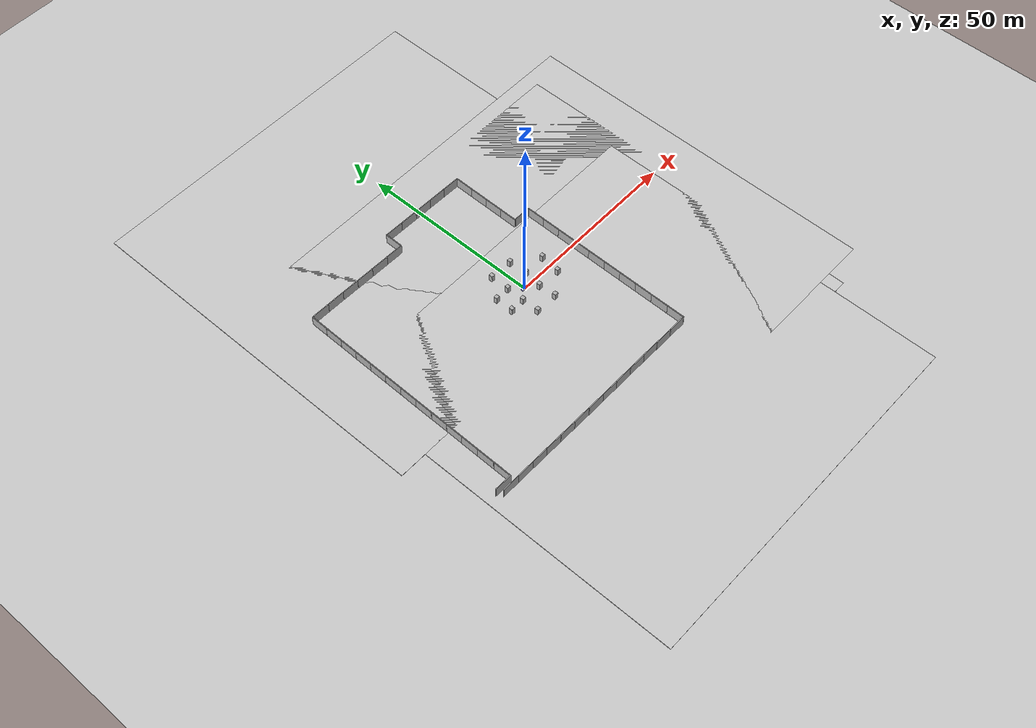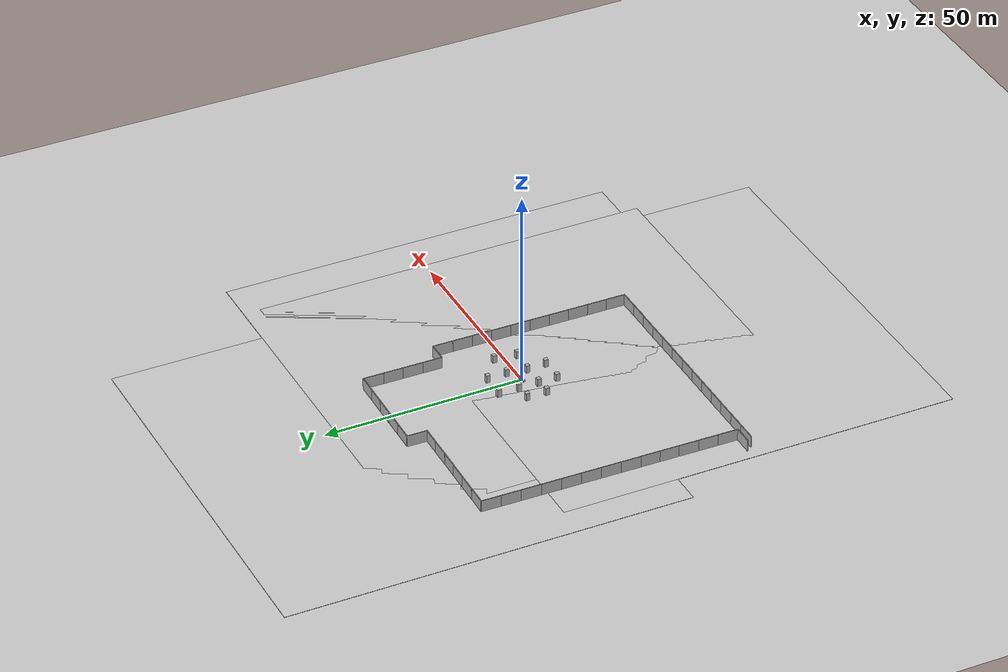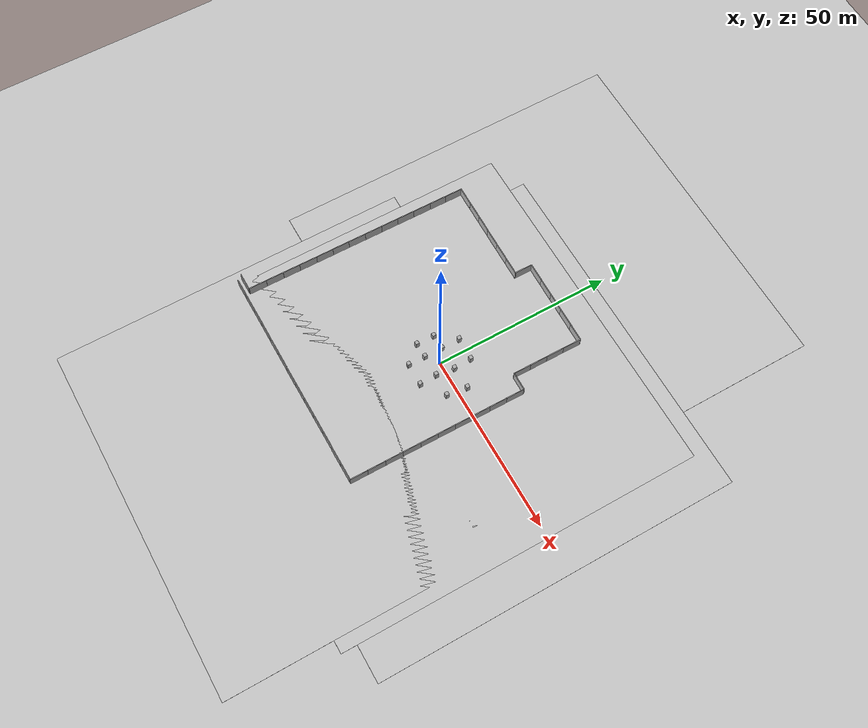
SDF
<sdf version="1.9">
 <world name="block_room">
  <model name="ground_plane">
   <static>true</static>
   <link name="link">
    <collision name="collision">
     <geometry><plane><normal>0 0 1</normal><size>100 100</size></plane></geometry>
     <surface>
      <friction>
       <ode><mu>50</mu></ode>
       <bullet><friction>1</friction><rolling_friction>0.10000000000000001</rolling_friction></bullet>
      </friction>
     </surface>
    </collision>
    <visual name="visual">
     <geometry><plane><normal>0 0 1</normal><size>100 100</size></plane></geometry>
     <material>
      <ambient>0.8 0.8 0.8 1</ambient>
      <diffuse>0.8 0.8 0.8 1</diffuse>
      <specular>0.8 0.8 0.8 1</specular>
     </material>
    </visual>
    <inertial>
     <mass>1</mass>
     <inertia><ixx>1</ixx><ixy>0</ixy><ixz>0</ixz><iyy>1</iyy><iyz>0</iyz><izz>1</izz></inertia>
    </inertial>
   </link>
  </model>
  <include>
   <uri>file:///home/dliujm/um_files/rob_498_av/Autovehicle25/audi_ws/install/robot_desc/share/robot_desc/models/lucy</uri>
   <name>lucy_robot</name>
  </include>
  <model name="ground_plane_1">
   <static>true</static>
   <link name="link">
    <collision name="collision">
     <geometry><plane><normal>0 0 1</normal><size>100 100</size></plane></geometry>
     <surface>
      <friction>
       <ode><mu>50</mu></ode>
       <bullet><friction>1</friction><rolling_friction>0.10000000000000001</rolling_friction></bullet>
      </friction>
     </surface>
    </collision>
    <visual name="visual">
     <geometry><plane><normal>0 0 1</normal><size>100 100</size></plane></geometry>
     <material>
      <ambient>0.8 0.8 0.8 1</ambient>
      <diffuse>0.8 0.8 0.8 1</diffuse>
      <specular>0.8 0.8 0.8 1</specular>
     </material>
    </visual>
    <inertial>
     <mass>1</mass>
     <inertia><ixx>1</ixx><ixy>0</ixy><ixz>0</ixz><iyy>1</iyy><iyz>0</iyz><izz>1</izz></inertia>
    </inertial>
   </link>
   <pose>3.37132 -6.94607 0 0 -0 0</pose>
  </model>
  <model name="ground_plane_1_1">
   <static>true</static>
   <link name="link">
    <collision name="collision">
     <geometry><plane><normal>0 0 1</normal><size>100 100</size></plane></geometry>
     <surface>
      <friction>
       <ode><mu>50</mu></ode>
       <bullet><friction>1</friction><rolling_friction>0.10000000000000001</rolling_friction></bullet>
      </friction>
     </surface>
    </collision>
    <visual name="visual">
     <geometry><plane><normal>0 0 1</normal><size>100 100</size></plane></geometry>
     <material>
      <ambient>0.8 0.8 0.8 1</ambient>
      <diffuse>0.8 0.8 0.8 1</diffuse>
      <specular>0.8 0.8 0.8 1</specular>
     </material>
    </visual>
    <inertial>
     <mass>1</mass>
     <inertia><ixx>1</ixx><ixy>0</ixy><ixz>0</ixz><iyy>1</iyy><iyz>0</iyz><izz>1</izz></inertia>
    </inertial>
   </link>
   <pose>13.6849 -2.64222 0 0 -0 0</pose>
  </model>
  <model name="wall">
   <static>true</static>
   <link name="link">
    <collision name="collision"><geometry><box><size>5 0.2 3</size></box></geometry></collision>
    <visual name="visual">
     <geometry><box><size>5 0.2 3</size></box></geometry>
     <material><ambient>0.7 0.7 0.7 1</ambient><diffuse>0.7 0.7 0.7 1</diffuse></material>
    </visual>
    <inertial>
     <mass>1</mass>
     <inertia><ixx>1</ixx><ixy>0</ixy><ixz>0</ixz><iyy>1</iyy><iyz>0</iyz><izz>1</izz></inertia>
    </inertial>
   </link>
   <pose>0 -35.2766 1.50449 0 -0 0</pose>
  </model>
  <model name="ground_plane_1_2">
   <static>true</static>
   <link name="link">
    <collision name="collision">
     <geometry><plane><normal>0 0 1</normal><size>100 100</size></plane></geometry>
     <surface>
      <friction>
       <ode><mu>50</mu></ode>
       <bullet><friction>1</friction><rolling_friction>0.10000000000000001</rolling_friction></bullet>
      </friction>
     </surface>
    </collision>
    <visual name="visual">
     <geometry><plane><normal>0 0 1</normal><size>100 100</size></plane></geometry>
     <material>
      <ambient>0.8 0.8 0.8 1</ambient>
      <diffuse>0.8 0.8 0.8 1</diffuse>
      <specular>0.8 0.8 0.8 1</specular>
     </material>
    </visual>
    <inertial>
     <mass>1</mass>
     <inertia><ixx>1</ixx><ixy>0</ixy><ixz>0</ixz><iyy>1</iyy><iyz>0</iyz><izz>1</izz></inertia>
    </inertial>
   </link>
   <pose>-0.202127 -35.9388 0 0 -0 0</pose>
  </model>
  <model name="wall_1">
   <static>true</static>
   <link name="link">
    <collision name="collision"><geometry><box><size>5 0.2 3</size></box></geometry></collision>
    <visual name="visual">
     <geometry><box><size>5 0.2 3</size></box></geometry>
     <material><ambient>0.7 0.7 0.7 1</ambient><diffuse>0.7 0.7 0.7 1</diffuse></material>
    </visual>
    <inertial>
     <mass>1</mass>
     <inertia><ixx>1</ixx><ixy>0</ixy><ixz>0</ixz><iyy>1</iyy><iyz>0</iyz><izz>1</izz></inertia>
    </inertial>
   </link>
   <pose>-5.01711 -35.2867 1.50449 0 -0 0</pose>
  </model>
  <model name="wall_2">
   <static>true</static>
   <link name="link">
    <collision name="collision"><geometry><box><size>5 0.2 3</size></box></geometry></collision>
    <visual name="visual">
     <geometry><box><size>5 0.2 3</size></box></geometry>
     <material><ambient>0.7 0.7 0.7 1</ambient><diffuse>0.7 0.7 0.7 1</diffuse></material>
    </visual>
    <inertial>
     <mass>1</mass>
     <inertia><ixx>1</ixx><ixy>0</ixy><ixz>0</ixz><iyy>1</iyy><iyz>0</iyz><izz>1</izz></inertia>
    </inertial>
   </link>
   <pose>-10.0087 -35.2904 1.50449 0 -0 0</pose>
  </model>
  <model name="wall_3">
   <static>true</static>
   <link name="link">
    <collision name="collision"><geometry><box><size>5 0.2 3</size></box></geometry></collision>
    <visual name="visual">
     <geometry><box><size>5 0.2 3</size></box></geometry>
     <material><ambient>0.7 0.7 0.7 1</ambient><diffuse>0.7 0.7 0.7 1</diffuse></material>
    </visual>
    <inertial>
     <mass>1</mass>
     <inertia><ixx>1</ixx><ixy>0</ixy><ixz>0</ixz><iyy>1</iyy><iyz>0</iyz><izz>1</izz></inertia>
    </inertial>
   </link>
   <pose>4.87545 -35.2716 1.50449 0 -0 0</pose>
  </model>
  <model name="wall_4">
   <static>true</static>
   <link name="link">
    <collision name="collision"><geometry><box><size>5 0.2 3</size></box></geometry></collision>
    <visual name="visual">
     <geometry><box><size>5 0.2 3</size></box></geometry>
     <material><ambient>0.7 0.7 0.7 1</ambient><diffuse>0.7 0.7 0.7 1</diffuse></material>
    </visual>
    <inertial>
     <mass>1</mass>
     <inertia><ixx>1</ixx><ixy>0</ixy><ixz>0</ixz><iyy>1</iyy><iyz>0</iyz><izz>1</izz></inertia>
    </inertial>
   </link>
   <pose>9.82758 -35.33 1.50449 0 -0 0</pose>
  </model>
  <model name="wall_5">
   <static>true</static>
   <link name="link">
    <collision name="collision"><geometry><box><size>5 0.2 3</size></box></geometry></collision>
    <visual name="visual">
     <geometry><box><size>5 0.2 3</size></box></geometry>
     <material><ambient>0.7 0.7 0.7 1</ambient><diffuse>0.7 0.7 0.7 1</diffuse></material>
    </visual>
    <inertial>
     <mass>1</mass>
     <inertia><ixx>1</ixx><ixy>0</ixy><ixz>0</ixz><iyy>1</iyy><iyz>0</iyz><izz>1</izz></inertia>
    </inertial>
   </link>
   <pose>14.8056 -35.3183 1.50449 0 -0 0</pose>
  </model>
  <model name="wall_7">
   <static>true</static>
   <link name="link">
    <collision name="collision"><geometry><box><size>5 0.2 3</size></box></geometry></collision>
    <visual name="visual">
     <geometry><box><size>5 0.2 3</size></box></geometry>
     <material><ambient>0.7 0.7 0.7 1</ambient><diffuse>0.7 0.7 0.7 1</diffuse></material>
    </visual>
    <inertial>
     <mass>1</mass>
     <inertia><ixx>1</ixx><ixy>0</ixy><ixz>0</ixz><iyy>1</iyy><iyz>0</iyz><izz>1</izz></inertia>
    </inertial>
   </link>
   <pose>17.4193 -32.9231 1.50449 0 0 -1.57867</pose>
  </model>
  <model name="wall_7_1">
   <static>true</static>
   <link name="link">
    <collision name="collision"><geometry><box><size>5 0.2 3</size></box></geometry></collision>
    <visual name="visual">
     <geometry><box><size>5 0.2 3</size></box></geometry>
     <material><ambient>0.7 0.7 0.7 1</ambient><diffuse>0.7 0.7 0.7 1</diffuse></material>
    </visual>
    <inertial>
     <mass>1</mass>
     <inertia><ixx>1</ixx><ixy>0</ixy><ixz>0</ixz><iyy>1</iyy><iyz>0</iyz><izz>1</izz></inertia>
    </inertial>
   </link>
   <pose>17.4426 -27.9423 1.50449 0 0 -1.57867</pose>
  </model>
  <model name="wall_7_2">
   <static>true</static>
   <link name="link">
    <collision name="collision"><geometry><box><size>5 0.2 3</size></box></geometry></collision>
    <visual name="visual">
     <geometry><box><size>5 0.2 3</size></box></geometry>
     <material><ambient>0.7 0.7 0.7 1</ambient><diffuse>0.7 0.7 0.7 1</diffuse></material>
    </visual>
    <inertial>
     <mass>1</mass>
     <inertia><ixx>1</ixx><ixy>0</ixy><ixz>0</ixz><iyy>1</iyy><iyz>0</iyz><izz>1</izz></inertia>
    </inertial>
   </link>
   <pose>17.4693 -22.9812 1.50449 0 0 -1.57867</pose>
  </model>
  <model name="wall_7_3">
   <static>true</static>
   <link name="link">
    <collision name="collision"><geometry><box><size>5 0.2 3</size></box></geometry></collision>
    <visual name="visual">
     <geometry><box><size>5 0.2 3</size></box></geometry>
     <material><ambient>0.7 0.7 0.7 1</ambient><diffuse>0.7 0.7 0.7 1</diffuse></material>
    </visual>
    <inertial>
     <mass>1</mass>
     <inertia><ixx>1</ixx><ixy>0</ixy><ixz>0</ixz><iyy>1</iyy><iyz>0</iyz><izz>1</izz></inertia>
    </inertial>
   </link>
   <pose>17.508 -18.0005 1.50449 0 0 -1.57867</pose>
  </model>
  <model name="wall_7_4">
   <static>true</static>
   <link name="link">
    <collision name="collision"><geometry><box><size>5 0.2 3</size></box></geometry></collision>
    <visual name="visual">
     <geometry><box><size>5 0.2 3</size></box></geometry>
     <material><ambient>0.7 0.7 0.7 1</ambient><diffuse>0.7 0.7 0.7 1</diffuse></material>
    </visual>
    <inertial>
     <mass>1</mass>
     <inertia><ixx>1</ixx><ixy>0</ixy><ixz>0</ixz><iyy>1</iyy><iyz>0</iyz><izz>1</izz></inertia>
    </inertial>
   </link>
   <pose>17.5521 -12.9986 1.50449 0 0 -1.57867</pose>
  </model>
  <model name="wall_7_5">
   <static>true</static>
   <link name="link">
    <collision name="collision"><geometry><box><size>5 0.2 3</size></box></geometry></collision>
    <visual name="visual">
     <geometry><box><size>5 0.2 3</size></box></geometry>
     <material><ambient>0.7 0.7 0.7 1</ambient><diffuse>0.7 0.7 0.7 1</diffuse></material>
    </visual>
    <inertial>
     <mass>1</mass>
     <inertia><ixx>1</ixx><ixy>0</ixy><ixz>0</ixz><iyy>1</iyy><iyz>0</iyz><izz>1</izz></inertia>
    </inertial>
   </link>
   <pose>17.5839 -7.99492 1.50449 0 0 -1.57867</pose>
  </model>
  <model name="wall_7_6">
   <static>true</static>
   <link name="link">
    <collision name="collision"><geometry><box><size>5 0.2 3</size></box></geometry></collision>
    <visual name="visual">
     <geometry><box><size>5 0.2 3</size></box></geometry>
     <material><ambient>0.7 0.7 0.7 1</ambient><diffuse>0.7 0.7 0.7 1</diffuse></material>
    </visual>
    <inertial>
     <mass>1</mass>
     <inertia><ixx>1</ixx><ixy>0</ixy><ixz>0</ixz><iyy>1</iyy><iyz>0</iyz><izz>1</izz></inertia>
    </inertial>
   </link>
   <pose>17.6254 -3.00807 1.50449 0 0 -1.57867</pose>
  </model>
  <model name="wall_7_7">
   <static>true</static>
   <link name="link">
    <collision name="collision"><geometry><box><size>5 0.2 3</size></box></geometry></collision>
    <visual name="visual">
     <geometry><box><size>5 0.2 3</size></box></geometry>
     <material><ambient>0.7 0.7 0.7 1</ambient><diffuse>0.7 0.7 0.7 1</diffuse></material>
    </visual>
    <inertial>
     <mass>1</mass>
     <inertia><ixx>1</ixx><ixy>0</ixy><ixz>0</ixz><iyy>1</iyy><iyz>0</iyz><izz>1</izz></inertia>
    </inertial>
   </link>
   <pose>17.6643 1.98188 1.50449 0 0 -1.57867</pose>
  </model>
  <model name="wall_7_8">
   <static>true</static>
   <link name="link">
    <collision name="collision"><geometry><box><size>5 0.2 3</size></box></geometry></collision>
    <visual name="visual">
     <geometry><box><size>5 0.2 3</size></box></geometry>
     <material><ambient>0.7 0.7 0.7 1</ambient><diffuse>0.7 0.7 0.7 1</diffuse></material>
    </visual>
    <inertial>
     <mass>1</mass>
     <inertia><ixx>1</ixx><ixy>0</ixy><ixz>0</ixz><iyy>1</iyy><iyz>0</iyz><izz>1</izz></inertia>
    </inertial>
   </link>
   <pose>17.7003 6.98697 1.50449 0 0 -1.57867</pose>
  </model>
  <model name="wall_7_9">
   <static>true</static>
   <link name="link">
    <collision name="collision"><geometry><box><size>5 0.2 3</size></box></geometry></collision>
    <visual name="visual">
     <geometry><box><size>5 0.2 3</size></box></geometry>
     <material><ambient>0.7 0.7 0.7 1</ambient><diffuse>0.7 0.7 0.7 1</diffuse></material>
    </visual>
    <inertial>
     <mass>1</mass>
     <inertia><ixx>1</ixx><ixy>0</ixy><ixz>0</ixz><iyy>1</iyy><iyz>0</iyz><izz>1</izz></inertia>
    </inertial>
   </link>
   <pose>17.744 11.9433 1.50449 0 0 -1.57867</pose>
  </model>
  <model name="wall_7_10">
   <static>true</static>
   <link name="link">
    <collision name="collision"><geometry><box><size>5 0.2 3</size></box></geometry></collision>
    <visual name="visual">
     <geometry><box><size>5 0.2 3</size></box></geometry>
     <material><ambient>0.7 0.7 0.7 1</ambient><diffuse>0.7 0.7 0.7 1</diffuse></material>
    </visual>
    <inertial>
     <mass>1</mass>
     <inertia><ixx>1</ixx><ixy>0</ixy><ixz>0</ixz><iyy>1</iyy><iyz>0</iyz><izz>1</izz></inertia>
    </inertial>
   </link>
   <pose>15.3706 14.5675 1.50449 0 -0 3.12423</pose>
  </model>
  <model name="wall_7_9_1">
   <static>true</static>
   <link name="link">
    <collision name="collision"><geometry><box><size>5 0.2 3</size></box></geometry></collision>
    <visual name="visual">
     <geometry><box><size>5 0.2 3</size></box></geometry>
     <material><ambient>0.7 0.7 0.7 1</ambient><diffuse>0.7 0.7 0.7 1</diffuse></material>
    </visual>
    <inertial>
     <mass>1</mass>
     <inertia><ixx>1</ixx><ixy>0</ixy><ixz>0</ixz><iyy>1</iyy><iyz>0</iyz><izz>1</izz></inertia>
    </inertial>
   </link>
   <pose>12.7866 17.0253 1.50449 0 0 -1.57867</pose>
  </model>
  <model name="wall_7_9_2">
   <static>true</static>
   <link name="link">
    <collision name="collision"><geometry><box><size>5 0.2 3</size></box></geometry></collision>
    <visual name="visual">
     <geometry><box><size>5 0.2 3</size></box></geometry>
     <material><ambient>0.7 0.7 0.7 1</ambient><diffuse>0.7 0.7 0.7 1</diffuse></material>
    </visual>
    <inertial>
     <mass>1</mass>
     <inertia><ixx>1</ixx><ixy>0</ixy><ixz>0</ixz><iyy>1</iyy><iyz>0</iyz><izz>1</izz></inertia>
    </inertial>
   </link>
   <pose>12.8326 21.9834 1.50449 0 0 -1.57867</pose>
  </model>
  <model name="wall_7_9_3">
   <static>true</static>
   <link name="link">
    <collision name="collision"><geometry><box><size>5 0.2 3</size></box></geometry></collision>
    <visual name="visual">
     <geometry><box><size>5 0.2 3</size></box></geometry>
     <material><ambient>0.7 0.7 0.7 1</ambient><diffuse>0.7 0.7 0.7 1</diffuse></material>
    </visual>
    <inertial>
     <mass>1</mass>
     <inertia><ixx>1</ixx><ixy>0</ixy><ixz>0</ixz><iyy>1</iyy><iyz>0</iyz><izz>1</izz></inertia>
    </inertial>
   </link>
   <pose>12.8732 26.9224 1.50449 0 0 -1.57867</pose>
  </model>
  <model name="wall_7_9_4">
   <static>true</static>
   <link name="link">
    <collision name="collision"><geometry><box><size>5 0.2 3</size></box></geometry></collision>
    <visual name="visual">
     <geometry><box><size>5 0.2 3</size></box></geometry>
     <material><ambient>0.7 0.7 0.7 1</ambient><diffuse>0.7 0.7 0.7 1</diffuse></material>
    </visual>
    <inertial>
     <mass>1</mass>
     <inertia><ixx>1</ixx><ixy>0</ixy><ixz>0</ixz><iyy>1</iyy><iyz>0</iyz><izz>1</izz></inertia>
    </inertial>
   </link>
   <pose>12.917 31.9173 1.50449 0 0 -1.57867</pose>
  </model>
  <model name="wall_7_10_1">
   <static>true</static>
   <link name="link">
    <collision name="collision"><geometry><box><size>5 0.2 3</size></box></geometry></collision>
    <visual name="visual">
     <geometry><box><size>5 0.2 3</size></box></geometry>
     <material><ambient>0.7 0.7 0.7 1</ambient><diffuse>0.7 0.7 0.7 1</diffuse></material>
    </visual>
    <inertial>
     <mass>1</mass>
     <inertia><ixx>1</ixx><ixy>0</ixy><ixz>0</ixz><iyy>1</iyy><iyz>0</iyz><izz>1</izz></inertia>
    </inertial>
   </link>
   <pose>10.5507 34.5647 1.50449 0 -0 3.12423</pose>
  </model>
  <model name="wall_7_10_2">
   <static>true</static>
   <link name="link">
    <collision name="collision"><geometry><box><size>5 0.2 3</size></box></geometry></collision>
    <visual name="visual">
     <geometry><box><size>5 0.2 3</size></box></geometry>
     <material><ambient>0.7 0.7 0.7 1</ambient><diffuse>0.7 0.7 0.7 1</diffuse></material>
    </visual>
    <inertial>
     <mass>1</mass>
     <inertia><ixx>1</ixx><ixy>0</ixy><ixz>0</ixz><iyy>1</iyy><iyz>0</iyz><izz>1</izz></inertia>
    </inertial>
   </link>
   <pose>5.54363 34.6488 1.50449 0 -0 3.12423</pose>
  </model>
  <model name="wall_7_10_3">
   <static>true</static>
   <link name="link">
    <collision name="collision"><geometry><box><size>5 0.2 3</size></box></geometry></collision>
    <visual name="visual">
     <geometry><box><size>5 0.2 3</size></box></geometry>
     <material><ambient>0.7 0.7 0.7 1</ambient><diffuse>0.7 0.7 0.7 1</diffuse></material>
    </visual>
    <inertial>
     <mass>1</mass>
     <inertia><ixx>1</ixx><ixy>0</ixy><ixz>0</ixz><iyy>1</iyy><iyz>0</iyz><izz>1</izz></inertia>
    </inertial>
   </link>
   <pose>0.571802 34.7384 1.50449 0 -0 3.12423</pose>
  </model>
  <model name="wall_7_10_4">
   <static>true</static>
   <link name="link">
    <collision name="collision"><geometry><box><size>5 0.2 3</size></box></geometry></collision>
    <visual name="visual">
     <geometry><box><size>5 0.2 3</size></box></geometry>
     <material><ambient>0.7 0.7 0.7 1</ambient><diffuse>0.7 0.7 0.7 1</diffuse></material>
    </visual>
    <inertial>
     <mass>1</mass>
     <inertia><ixx>1</ixx><ixy>0</ixy><ixz>0</ixz><iyy>1</iyy><iyz>0</iyz><izz>1</izz></inertia>
    </inertial>
   </link>
   <pose>-4.45933 34.8251 1.50449 0 -0 3.12423</pose>
  </model>
  <model name="wall_7_10_5">
   <static>true</static>
   <link name="link">
    <collision name="collision"><geometry><box><size>5 0.2 3</size></box></geometry></collision>
    <visual name="visual">
     <geometry><box><size>5 0.2 3</size></box></geometry>
     <material><ambient>0.7 0.7 0.7 1</ambient><diffuse>0.7 0.7 0.7 1</diffuse></material>
    </visual>
    <inertial>
     <mass>1</mass>
     <inertia><ixx>1</ixx><ixy>0</ixy><ixz>0</ixz><iyy>1</iyy><iyz>0</iyz><izz>1</izz></inertia>
    </inertial>
   </link>
   <pose>-9.48187 34.9196 1.50449 0 -0 3.12423</pose>
  </model>
  <model name="wall_7_10_5_1">
   <static>true</static>
   <link name="link">
    <collision name="collision"><geometry><box><size>5 0.2 3</size></box></geometry></collision>
    <visual name="visual">
     <geometry><box><size>5 0.2 3</size></box></geometry>
     <material><ambient>0.7 0.7 0.7 1</ambient><diffuse>0.7 0.7 0.7 1</diffuse></material>
    </visual>
    <inertial>
     <mass>1</mass>
     <inertia><ixx>1</ixx><ixy>0</ixy><ixz>0</ixz><iyy>1</iyy><iyz>0</iyz><izz>1</izz></inertia>
    </inertial>
   </link>
   <pose>-12.1066 32.5743 1.50449 0 0 -1.58082</pose>
  </model>
  <model name="ground_plane_1_1_1">
   <static>true</static>
   <link name="link">
    <collision name="collision">
     <geometry><plane><normal>0 0 1</normal><size>100 100</size></plane></geometry>
     <surface>
      <friction>
       <ode><mu>50</mu></ode>
       <bullet><friction>1</friction><rolling_friction>0.10000000000000001</rolling_friction></bullet>
      </friction>
     </surface>
    </collision>
    <visual name="visual">
     <geometry><plane><normal>0 0 1</normal><size>100 100</size></plane></geometry>
     <material>
      <ambient>0.8 0.8 0.8 1</ambient>
      <diffuse>0.8 0.8 0.8 1</diffuse>
      <specular>0.8 0.8 0.8 1</specular>
     </material>
    </visual>
    <inertial>
     <mass>1</mass>
     <inertia><ixx>1</ixx><ixy>0</ixy><ixz>0</ixz><iyy>1</iyy><iyz>0</iyz><izz>1</izz></inertia>
    </inertial>
   </link>
   <pose>-7.7862 35.4267 0 0 -0 0</pose>
  </model>
  <model name="wall_7_10_5_2">
   <static>true</static>
   <link name="link">
    <collision name="collision"><geometry><box><size>5 0.2 3</size></box></geometry></collision>
    <visual name="visual">
     <geometry><box><size>5 0.2 3</size></box></geometry>
     <material><ambient>0.7 0.7 0.7 1</ambient><diffuse>0.7 0.7 0.7 1</diffuse></material>
    </visual>
    <inertial>
     <mass>1</mass>
     <inertia><ixx>1</ixx><ixy>0</ixy><ixz>0</ixz><iyy>1</iyy><iyz>0</iyz><izz>1</izz></inertia>
    </inertial>
   </link>
   <pose>-14.5273 30.0144 1.50449 0 -0 3.12423</pose>
  </model>
  <model name="wall_7_10_5_2_1">
   <static>true</static>
   <link name="link">
    <collision name="collision"><geometry><box><size>5 0.2 3</size></box></geometry></collision>
    <visual name="visual">
     <geometry><box><size>5 0.2 3</size></box></geometry>
     <material><ambient>0.7 0.7 0.7 1</ambient><diffuse>0.7 0.7 0.7 1</diffuse></material>
    </visual>
    <inertial>
     <mass>1</mass>
     <inertia><ixx>1</ixx><ixy>0</ixy><ixz>0</ixz><iyy>1</iyy><iyz>0</iyz><izz>1</izz></inertia>
    </inertial>
   </link>
   <pose>-19.5274 30.0957 1.50449 0 -0 3.12423</pose>
  </model>
  <model name="wall_7_10_5_2_1_1">
   <static>true</static>
   <link name="link">
    <collision name="collision"><geometry><box><size>5 0.2 3</size></box></geometry></collision>
    <visual name="visual">
     <geometry><box><size>5 0.2 3</size></box></geometry>
     <material><ambient>0.7 0.7 0.7 1</ambient><diffuse>0.7 0.7 0.7 1</diffuse></material>
    </visual>
    <inertial>
     <mass>1</mass>
     <inertia><ixx>1</ixx><ixy>0</ixy><ixz>0</ixz><iyy>1</iyy><iyz>0</iyz><izz>1</izz></inertia>
    </inertial>
   </link>
   <pose>-24.5301 30.1772 1.50449 0 -0 3.12423</pose>
  </model>
  <model name="wall_7_10_5_2_1_2">
   <static>true</static>
   <link name="link">
    <collision name="collision"><geometry><box><size>5 0.2 3</size></box></geometry></collision>
    <visual name="visual">
     <geometry><box><size>5 0.2 3</size></box></geometry>
     <material><ambient>0.7 0.7 0.7 1</ambient><diffuse>0.7 0.7 0.7 1</diffuse></material>
    </visual>
    <inertial>
     <mass>1</mass>
     <inertia><ixx>1</ixx><ixy>0</ixy><ixz>0</ixz><iyy>1</iyy><iyz>0</iyz><izz>1</izz></inertia>
    </inertial>
   </link>
   <pose>-29.3855 30.2908 1.50449 0 -0 3.12423</pose>
  </model>
  <model name="wall_7_10_5_2_1_3">
   <static>true</static>
   <link name="link">
    <collision name="collision"><geometry><box><size>5 0.2 3</size></box></geometry></collision>
    <visual name="visual">
     <geometry><box><size>5 0.2 3</size></box></geometry>
     <material><ambient>0.7 0.7 0.7 1</ambient><diffuse>0.7 0.7 0.7 1</diffuse></material>
    </visual>
    <inertial>
     <mass>1</mass>
     <inertia><ixx>1</ixx><ixy>0</ixy><ixz>0</ixz><iyy>1</iyy><iyz>0</iyz><izz>1</izz></inertia>
    </inertial>
   </link>
   <pose>-34.2301 30.3811 1.50449 0 -0 3.12423</pose>
  </model>
  <model name="wall_7_10_5_2_1_4">
   <static>true</static>
   <link name="link">
    <collision name="collision"><geometry><box><size>5 0.2 3</size></box></geometry></collision>
    <visual name="visual">
     <geometry><box><size>5 0.2 3</size></box></geometry>
     <material><ambient>0.7 0.7 0.7 1</ambient><diffuse>0.7 0.7 0.7 1</diffuse></material>
    </visual>
    <inertial>
     <mass>1</mass>
     <inertia><ixx>1</ixx><ixy>0</ixy><ixz>0</ixz><iyy>1</iyy><iyz>0</iyz><izz>1</izz></inertia>
    </inertial>
   </link>
   <pose>-39.219 30.4453 1.50449 0 -0 3.12423</pose>
  </model>
  <model name="wall_7_10_5_2_1_5">
   <static>true</static>
   <link name="link">
    <collision name="collision"><geometry><box><size>5 0.2 3</size></box></geometry></collision>
    <visual name="visual">
     <geometry><box><size>5 0.2 3</size></box></geometry>
     <material><ambient>0.7 0.7 0.7 1</ambient><diffuse>0.7 0.7 0.7 1</diffuse></material>
    </visual>
    <inertial>
     <mass>1</mass>
     <inertia><ixx>1</ixx><ixy>0</ixy><ixz>0</ixz><iyy>1</iyy><iyz>0</iyz><izz>1</izz></inertia>
    </inertial>
   </link>
   <pose>-41.8509 28.0967 1.50449 0 -0 1.55685</pose>
  </model>
  <model name="wall_7_10_5_2_1_5_1">
   <static>true</static>
   <link name="link">
    <collision name="collision"><geometry><box><size>5 0.2 3</size></box></geometry></collision>
    <visual name="visual">
     <geometry><box><size>5 0.2 3</size></box></geometry>
     <material><ambient>0.7 0.7 0.7 1</ambient><diffuse>0.7 0.7 0.7 1</diffuse></material>
    </visual>
    <inertial>
     <mass>1</mass>
     <inertia><ixx>1</ixx><ixy>0</ixy><ixz>0</ixz><iyy>1</iyy><iyz>0</iyz><izz>1</izz></inertia>
    </inertial>
   </link>
   <pose>-41.9211 23.1661 1.50449 0 -0 1.55685</pose>
  </model>
  <model name="wall_7_10_5_2_1_5_2">
   <static>true</static>
   <link name="link">
    <collision name="collision"><geometry><box><size>5 0.2 3</size></box></geometry></collision>
    <visual name="visual">
     <geometry><box><size>5 0.2 3</size></box></geometry>
     <material><ambient>0.7 0.7 0.7 1</ambient><diffuse>0.7 0.7 0.7 1</diffuse></material>
    </visual>
    <inertial>
     <mass>1</mass>
     <inertia><ixx>1</ixx><ixy>0</ixy><ixz>0</ixz><iyy>1</iyy><iyz>0</iyz><izz>1</izz></inertia>
    </inertial>
   </link>
   <pose>-41.9902 18.2015 1.50449 0 -0 1.55685</pose>
  </model>
  <model name="wall_7_10_5_2_1_5_3">
   <static>true</static>
   <link name="link">
    <collision name="collision"><geometry><box><size>5 0.2 3</size></box></geometry></collision>
    <visual name="visual">
     <geometry><box><size>5 0.2 3</size></box></geometry>
     <material><ambient>0.7 0.7 0.7 1</ambient><diffuse>0.7 0.7 0.7 1</diffuse></material>
    </visual>
    <inertial>
     <mass>1</mass>
     <inertia><ixx>1</ixx><ixy>0</ixy><ixz>0</ixz><iyy>1</iyy><iyz>0</iyz><izz>1</izz></inertia>
    </inertial>
   </link>
   <pose>-42.0628 13.2148 1.50449 0 -0 1.55685</pose>
  </model>
  <model name="wall_7_10_5_2_1_5_4">
   <static>true</static>
   <link name="link">
    <collision name="collision"><geometry><box><size>5 0.2 3</size></box></geometry></collision>
    <visual name="visual">
     <geometry><box><size>5 0.2 3</size></box></geometry>
     <material><ambient>0.7 0.7 0.7 1</ambient><diffuse>0.7 0.7 0.7 1</diffuse></material>
    </visual>
    <inertial>
     <mass>1</mass>
     <inertia><ixx>1</ixx><ixy>0</ixy><ixz>0</ixz><iyy>1</iyy><iyz>0</iyz><izz>1</izz></inertia>
    </inertial>
   </link>
   <pose>-42.1335 8.27192 1.50449 0 -0 1.55685</pose>
  </model>
  <model name="wall_7_10_5_2_1_5_5">
   <static>true</static>
   <link name="link">
    <collision name="collision"><geometry><box><size>5 0.2 3</size></box></geometry></collision>
    <visual name="visual">
     <geometry><box><size>5 0.2 3</size></box></geometry>
     <material><ambient>0.7 0.7 0.7 1</ambient><diffuse>0.7 0.7 0.7 1</diffuse></material>
    </visual>
    <inertial>
     <mass>1</mass>
     <inertia><ixx>1</ixx><ixy>0</ixy><ixz>0</ixz><iyy>1</iyy><iyz>0</iyz><izz>1</izz></inertia>
    </inertial>
   </link>
   <pose>-42.1914 3.28587 1.50449 0 -0 1.55685</pose>
  </model>
  <model name="wall_7_10_5_2_1_5_6">
   <static>true</static>
   <link name="link">
    <collision name="collision"><geometry><box><size>5 0.2 3</size></box></geometry></collision>
    <visual name="visual">
     <geometry><box><size>5 0.2 3</size></box></geometry>
     <material><ambient>0.7 0.7 0.7 1</ambient><diffuse>0.7 0.7 0.7 1</diffuse></material>
    </visual>
    <inertial>
     <mass>1</mass>
     <inertia><ixx>1</ixx><ixy>0</ixy><ixz>0</ixz><iyy>1</iyy><iyz>0</iyz><izz>1</izz></inertia>
    </inertial>
   </link>
   <pose>-42.2558 -1.67549 1.50449 0 -0 1.55685</pose>
  </model>
  <model name="wall_7_10_5_2_1_5_7">
   <static>true</static>
   <link name="link">
    <collision name="collision"><geometry><box><size>5 0.2 3</size></box></geometry></collision>
    <visual name="visual">
     <geometry><box><size>5 0.2 3</size></box></geometry>
     <material><ambient>0.7 0.7 0.7 1</ambient><diffuse>0.7 0.7 0.7 1</diffuse></material>
    </visual>
    <inertial>
     <mass>1</mass>
     <inertia><ixx>1</ixx><ixy>0</ixy><ixz>0</ixz><iyy>1</iyy><iyz>0</iyz><izz>1</izz></inertia>
    </inertial>
   </link>
   <pose>-42.323 -6.67486 1.50449 0 -0 1.55685</pose>
  </model>
  <model name="wall_7_10_5_2_1_5_8">
   <static>true</static>
   <link name="link">
    <collision name="collision"><geometry><box><size>5 0.2 3</size></box></geometry></collision>
    <visual name="visual">
     <geometry><box><size>5 0.2 3</size></box></geometry>
     <material><ambient>0.7 0.7 0.7 1</ambient><diffuse>0.7 0.7 0.7 1</diffuse></material>
    </visual>
    <inertial>
     <mass>1</mass>
     <inertia><ixx>1</ixx><ixy>0</ixy><ixz>0</ixz><iyy>1</iyy><iyz>0</iyz><izz>1</izz></inertia>
    </inertial>
   </link>
   <pose>-42.3603 -11.4984 1.50449 0 -0 1.55685</pose>
  </model>
  <model name="wall_7_10_5_2_1_5_9">
   <static>true</static>
   <link name="link">
    <collision name="collision"><geometry><box><size>5 0.2 3</size></box></geometry></collision>
    <visual name="visual">
     <geometry><box><size>5 0.2 3</size></box></geometry>
     <material><ambient>0.7 0.7 0.7 1</ambient><diffuse>0.7 0.7 0.7 1</diffuse></material>
    </visual>
    <inertial>
     <mass>1</mass>
     <inertia><ixx>1</ixx><ixy>0</ixy><ixz>0</ixz><iyy>1</iyy><iyz>0</iyz><izz>1</izz></inertia>
    </inertial>
   </link>
   <pose>-42.4207 -16.369 1.50449 0 -0 1.55685</pose>
  </model>
  <model name="wall_7_10_5_2_1_5_10">
   <static>true</static>
   <link name="link">
    <collision name="collision"><geometry><box><size>5 0.2 3</size></box></geometry></collision>
    <visual name="visual">
     <geometry><box><size>5 0.2 3</size></box></geometry>
     <material><ambient>0.7 0.7 0.7 1</ambient><diffuse>0.7 0.7 0.7 1</diffuse></material>
    </visual>
    <inertial>
     <mass>1</mass>
     <inertia><ixx>1</ixx><ixy>0</ixy><ixz>0</ixz><iyy>1</iyy><iyz>0</iyz><izz>1</izz></inertia>
    </inertial>
   </link>
   <pose>-42.4946 -21.2695 1.50449 0 -0 1.55685</pose>
  </model>
  <model name="wall_7_10_5_2_1_5_11">
   <static>true</static>
   <link name="link">
    <collision name="collision"><geometry><box><size>5 0.2 3</size></box></geometry></collision>
    <visual name="visual">
     <geometry><box><size>5 0.2 3</size></box></geometry>
     <material><ambient>0.7 0.7 0.7 1</ambient><diffuse>0.7 0.7 0.7 1</diffuse></material>
    </visual>
    <inertial>
     <mass>1</mass>
     <inertia><ixx>1</ixx><ixy>0</ixy><ixz>0</ixz><iyy>1</iyy><iyz>0</iyz><izz>1</izz></inertia>
    </inertial>
   </link>
   <pose>-42.5626 -26.2559 1.50449 0 -0 1.55685</pose>
  </model>
  <model name="wall_7_10_5_2_1_5_12">
   <static>true</static>
   <link name="link">
    <collision name="collision"><geometry><box><size>5 0.2 3</size></box></geometry></collision>
    <visual name="visual">
     <geometry><box><size>5 0.2 3</size></box></geometry>
     <material><ambient>0.7 0.7 0.7 1</ambient><diffuse>0.7 0.7 0.7 1</diffuse></material>
    </visual>
    <inertial>
     <mass>1</mass>
     <inertia><ixx>1</ixx><ixy>0</ixy><ixz>0</ixz><iyy>1</iyy><iyz>0</iyz><izz>1</izz></inertia>
    </inertial>
   </link>
   <pose>-42.6138 -31.241 1.50449 0 -0 1.55685</pose>
  </model>
  <model name="wall_2_1">
   <static>true</static>
   <link name="link">
    <collision name="collision"><geometry><box><size>5 0.2 3</size></box></geometry></collision>
    <visual name="visual">
     <geometry><box><size>5 0.2 3</size></box></geometry>
     <material><ambient>0.7 0.7 0.7 1</ambient><diffuse>0.7 0.7 0.7 1</diffuse></material>
    </visual>
    <inertial>
     <mass>1</mass>
     <inertia><ixx>1</ixx><ixy>0</ixy><ixz>0</ixz><iyy>1</iyy><iyz>0</iyz><izz>1</izz></inertia>
    </inertial>
   </link>
   <pose>-14.8674 -35.312 1.50449 0 -0 0</pose>
  </model>
  <model name="wall_2_1_1">
   <static>true</static>
   <link name="link">
    <collision name="collision"><geometry><box><size>5 0.2 3</size></box></geometry></collision>
    <visual name="visual">
     <geometry><box><size>5 0.2 3</size></box></geometry>
     <material><ambient>0.7 0.7 0.7 1</ambient><diffuse>0.7 0.7 0.7 1</diffuse></material>
    </visual>
    <inertial>
     <mass>1</mass>
     <inertia><ixx>1</ixx><ixy>0</ixy><ixz>0</ixz><iyy>1</iyy><iyz>0</iyz><izz>1</izz></inertia>
    </inertial>
   </link>
   <pose>-19.8879 -35.2727 1.50449 0 -0 0</pose>
  </model>
  <model name="wall_2_1_2">
   <static>true</static>
   <link name="link">
    <collision name="collision"><geometry><box><size>5 0.2 3</size></box></geometry></collision>
    <visual name="visual">
     <geometry><box><size>5 0.2 3</size></box></geometry>
     <material><ambient>0.7 0.7 0.7 1</ambient><diffuse>0.7 0.7 0.7 1</diffuse></material>
    </visual>
    <inertial>
     <mass>1</mass>
     <inertia><ixx>1</ixx><ixy>0</ixy><ixz>0</ixz><iyy>1</iyy><iyz>0</iyz><izz>1</izz></inertia>
    </inertial>
   </link>
   <pose>-24.7067 -35.2654 1.50449 0 -0 0</pose>
  </model>
  <model name="wall_2_1_3">
   <static>true</static>
   <link name="link">
    <collision name="collision"><geometry><box><size>5 0.2 3</size></box></geometry></collision>
    <visual name="visual">
     <geometry><box><size>5 0.2 3</size></box></geometry>
     <material><ambient>0.7 0.7 0.7 1</ambient><diffuse>0.7 0.7 0.7 1</diffuse></material>
    </visual>
    <inertial>
     <mass>1</mass>
     <inertia><ixx>1</ixx><ixy>0</ixy><ixz>0</ixz><iyy>1</iyy><iyz>0</iyz><izz>1</izz></inertia>
    </inertial>
   </link>
   <pose>-29.6231 -35.2366 1.50449 0 -0 0</pose>
  </model>
  <model name="wall_2_1_4">
   <static>true</static>
   <link name="link">
    <collision name="collision"><geometry><box><size>5 0.2 3</size></box></geometry></collision>
    <visual name="visual">
     <geometry><box><size>5 0.2 3</size></box></geometry>
     <material><ambient>0.7 0.7 0.7 1</ambient><diffuse>0.7 0.7 0.7 1</diffuse></material>
    </visual>
    <inertial>
     <mass>1</mass>
     <inertia><ixx>1</ixx><ixy>0</ixy><ixz>0</ixz><iyy>1</iyy><iyz>0</iyz><izz>1</izz></inertia>
    </inertial>
   </link>
   <pose>-34.258 -35.2167 1.50449 0 -0 0</pose>
  </model>
  <model name="wall_2_1_5">
   <static>true</static>
   <link name="link">
    <collision name="collision"><geometry><box><size>5 0.2 3</size></box></geometry></collision>
    <visual name="visual">
     <geometry><box><size>5 0.2 3</size></box></geometry>
     <material><ambient>0.7 0.7 0.7 1</ambient><diffuse>0.7 0.7 0.7 1</diffuse></material>
    </visual>
    <inertial>
     <mass>1</mass>
     <inertia><ixx>1</ixx><ixy>0</ixy><ixz>0</ixz><iyy>1</iyy><iyz>0</iyz><izz>1</izz></inertia>
    </inertial>
   </link>
   <pose>-39.137 -35.2235 1.50449 0 -0 0</pose>
  </model>
  <model name="wall_2_1_6">
   <static>true</static>
   <link name="link">
    <collision name="collision"><geometry><box><size>5 0.2 3</size></box></geometry></collision>
    <visual name="visual">
     <geometry><box><size>5 0.2 3</size></box></geometry>
     <material><ambient>0.7 0.7 0.7 1</ambient><diffuse>0.7 0.7 0.7 1</diffuse></material>
    </visual>
    <inertial>
     <mass>1</mass>
     <inertia><ixx>1</ixx><ixy>0</ixy><ixz>0</ixz><iyy>1</iyy><iyz>0</iyz><izz>1</izz></inertia>
    </inertial>
   </link>
   <pose>-45.0616 -33.8034 1.50449 0 -0 0</pose>
  </model>
  <model name="wall_2_1_7">
   <static>true</static>
   <link name="link">
    <collision name="collision"><geometry><box><size>5 0.2 3</size></box></geometry></collision>
    <visual name="visual">
     <geometry><box><size>5 0.2 3</size></box></geometry>
     <material><ambient>0.7 0.7 0.7 1</ambient><diffuse>0.7 0.7 0.7 1</diffuse></material>
    </visual>
    <inertial>
     <mass>1</mass>
     <inertia><ixx>1</ixx><ixy>0</ixy><ixz>0</ixz><iyy>1</iyy><iyz>0</iyz><izz>1</izz></inertia>
    </inertial>
   </link>
   <pose>-43.9922 -35.2071 1.50449 0 -0 0</pose>
  </model>
  <model name="box">
   <pose>3.29516 2.46895 0.539454 -0 0 0</pose>
   <link name="box_link">
    <inertial>
     <inertia><ixx>0.16666</ixx><ixy>0</ixy><ixz>0</ixz><iyy>0.16666</iyy><iyz>0</iyz><izz>0.16666</izz></inertia>
     <mass>1</mass>
    </inertial>
    <collision name="box_collision"><geometry><box><size>1 1 3</size></box></geometry></collision>
    <visual name="box_visual">
     <geometry><box><size>1 1 3</size></box></geometry>
     <material>
      <ambient>0.3 0.3 0.3 1</ambient>
      <diffuse>0.7 0.7 0.7 1</diffuse>
      <specular>1 1 1 1</specular>
     </material>
    </visual>
   </link>
   <static>false</static>
  </model>
  <model name="box_0">
   <pose>2.55498 -2.54845 0.539456 -0 0 0</pose>
   <link name="box_link">
    <inertial>
     <inertia><ixx>0.16666</ixx><ixy>0</ixy><ixz>0</ixz><iyy>0.16666</iyy><iyz>0</iyz><izz>0.16666</izz></inertia>
     <mass>1</mass>
    </inertial>
    <collision name="box_collision"><geometry><box><size>1 1 3</size></box></geometry></collision>
    <visual name="box_visual">
     <geometry><box><size>1 1 3</size></box></geometry>
     <material>
      <ambient>0.3 0.3 0.3 1</ambient>
      <diffuse>0.7 0.7 0.7 1</diffuse>
      <specular>1 1 1 1</specular>
     </material>
    </visual>
   </link>
   <static>false</static>
  </model>
  <model name="box_1">
   <pose>-3.35008 2.51268 0.539458 -0 0 0</pose>
   <link name="box_link">
    <inertial>
     <inertia><ixx>0.16666</ixx><ixy>0</ixy><ixz>0</ixz><iyy>0.16666</iyy><iyz>0</iyz><izz>0.16666</izz></inertia>
     <mass>1</mass>
    </inertial>
    <collision name="box_collision"><geometry><box><size>1 1 3</size></box></geometry></collision>
    <visual name="box_visual">
     <geometry><box><size>1 1 3</size></box></geometry>
     <material>
      <ambient>0.3 0.3 0.3 1</ambient>
      <diffuse>0.7 0.7 0.7 1</diffuse>
      <specular>1 1 1 1</specular>
     </material>
    </visual>
   </link>
   <static>false</static>
  </model>
  <model name="box_2">
   <pose>3.02463 7.48278 0.53946 -0 0 0</pose>
   <link name="box_link">
    <inertial>
     <inertia><ixx>0.16666</ixx><ixy>0</ixy><ixz>0</ixz><iyy>0.16666</iyy><iyz>0</iyz><izz>0.16666</izz></inertia>
     <mass>1</mass>
    </inertial>
    <collision name="box_collision"><geometry><box><size>1 1 3</size></box></geometry></collision>
    <visual name="box_visual">
     <geometry><box><size>1 1 3</size></box></geometry>
     <material>
      <ambient>0.3 0.3 0.3 1</ambient>
      <diffuse>0.7 0.7 0.7 1</diffuse>
      <specular>1 1 1 1</specular>
     </material>
    </visual>
   </link>
   <static>false</static>
  </model>
  <model name="box_3">
   <pose>-3.32408 7.67391 0.539462 -0 0 0</pose>
   <link name="box_link">
    <inertial>
     <inertia><ixx>0.16666</ixx><ixy>0</ixy><ixz>0</ixz><iyy>0.16666</iyy><iyz>0</iyz><izz>0.16666</izz></inertia>
     <mass>1</mass>
    </inertial>
    <collision name="box_collision"><geometry><box><size>1 1 3</size></box></geometry></collision>
    <visual name="box_visual">
     <geometry><box><size>1 1 3</size></box></geometry>
     <material>
      <ambient>0.3 0.3 0.3 1</ambient>
      <diffuse>0.7 0.7 0.7 1</diffuse>
      <specular>1 1 1 1</specular>
     </material>
    </visual>
   </link>
   <static>false</static>
  </model>
  <model name="box_4">
   <pose>8.8186 -2.95363 0.539464 0 0 0</pose>
   <link name="box_link">
    <inertial>
     <inertia><ixx>0.16666</ixx><ixy>0</ixy><ixz>0</ixz><iyy>0.16666</iyy><iyz>0</iyz><izz>0.16666</izz></inertia>
     <mass>1</mass>
    </inertial>
    <collision name="box_collision"><geometry><box><size>1 1 3</size></box></geometry></collision>
    <visual name="box_visual">
     <geometry><box><size>1 1 3</size></box></geometry>
     <material>
      <ambient>0.3 0.3 0.3 1</ambient>
      <diffuse>0.7 0.7 0.7 1</diffuse>
      <specular>1 1 1 1</specular>
     </material>
    </visual>
   </link>
   <static>false</static>
  </model>
  <model name="box_5">
   <pose>9.56165 2.67908 0.539466 -0 0 0</pose>
   <link name="box_link">
    <inertial>
     <inertia><ixx>0.16666</ixx><ixy>0</ixy><ixz>0</ixz><iyy>0.16666</iyy><iyz>0</iyz><izz>0.16666</izz></inertia>
     <mass>1</mass>
    </inertial>
    <collision name="box_collision"><geometry><box><size>1 1 3</size></box></geometry></collision>
    <visual name="box_visual">
     <geometry><box><size>1 1 3</size></box></geometry>
     <material>
      <ambient>0.3 0.3 0.3 1</ambient>
      <diffuse>0.7 0.7 0.7 1</diffuse>
      <specular>1 1 1 1</specular>
     </material>
    </visual>
   </link>
   <static>false</static>
  </model>
  <model name="box_6">
   <pose>2.83378 -7.4035 0.539468 -0 0 0</pose>
   <link name="box_link">
    <inertial>
     <inertia><ixx>0.16666</ixx><ixy>0</ixy><ixz>0</ixz><iyy>0.16666</iyy><iyz>0</iyz><izz>0.16666</izz></inertia>
     <mass>1</mass>
    </inertial>
    <collision name="box_collision"><geometry><box><size>1 1 3</size></box></geometry></collision>
    <visual name="box_visual">
     <geometry><box><size>1 1 3</size></box></geometry>
     <material>
      <ambient>0.3 0.3 0.3 1</ambient>
      <diffuse>0.7 0.7 0.7 1</diffuse>
      <specular>1 1 1 1</specular>
     </material>
    </visual>
   </link>
   <static>false</static>
  </model>
  <model name="box_7">
   <pose>-3.40216 -2.51871 0.53947 -0 0 0</pose>
   <link name="box_link">
    <inertial>
     <inertia><ixx>0.16666</ixx><ixy>0</ixy><ixz>0</ixz><iyy>0.16666</iyy><iyz>0</iyz><izz>0.16666</izz></inertia>
     <mass>1</mass>
    </inertial>
    <collision name="box_collision"><geometry><box><size>1 1 3</size></box></geometry></collision>
    <visual name="box_visual">
     <geometry><box><size>1 1 3</size></box></geometry>
     <material>
      <ambient>0.3 0.3 0.3 1</ambient>
      <diffuse>0.7 0.7 0.7 1</diffuse>
      <specular>1 1 1 1</specular>
     </material>
    </visual>
   </link>
   <static>false</static>
  </model>
  <model name="box_8">
   <pose>-3.39224 -7.29103 0.539472 -0 0 0</pose>
   <link name="box_link">
    <inertial>
     <inertia><ixx>0.16666</ixx><ixy>0</ixy><ixz>0</ixz><iyy>0.16666</iyy><iyz>0</iyz><izz>0.16666</izz></inertia>
     <mass>1</mass>
    </inertial>
    <collision name="box_collision"><geometry><box><size>1 1 3</size></box></geometry></collision>
    <visual name="box_visual">
     <geometry><box><size>1 1 3</size></box></geometry>
     <material>
      <ambient>0.3 0.3 0.3 1</ambient>
      <diffuse>0.7 0.7 0.7 1</diffuse>
      <specular>1 1 1 1</specular>
     </material>
    </visual>
   </link>
   <static>false</static>
  </model>
  <model name="box_9">
   <pose>-7.44528 2.36515 0.539476 -0 0 0</pose>
   <link name="box_link">
    <inertial>
     <inertia><ixx>0.16666</ixx><ixy>0</ixy><ixz>0</ixz><iyy>0.16666</iyy><iyz>0</iyz><izz>0.16666</izz></inertia>
     <mass>1</mass>
    </inertial>
    <collision name="box_collision"><geometry><box><size>1 1 3</size></box></geometry></collision>
    <visual name="box_visual">
     <geometry><box><size>1 1 3</size></box></geometry>
     <material>
      <ambient>0.3 0.3 0.3 1</ambient>
      <diffuse>0.7 0.7 0.7 1</diffuse>
      <specular>1 1 1 1</specular>
     </material>
    </visual>
   </link>
   <static>false</static>
  </model>
  <model name="box_10">
   <pose>-7.48523 -2.60824 0.539478 -0 0 0</pose>
   <link name="box_link">
    <inertial>
     <inertia><ixx>0.16666</ixx><ixy>0</ixy><ixz>0</ixz><iyy>0.16666</iyy><iyz>0</iyz><izz>0.16666</izz></inertia>
     <mass>1</mass>
    </inertial>
    <collision name="box_collision"><geometry><box><size>1 1 3</size></box></geometry></collision>
    <visual name="box_visual">
     <geometry><box><size>1 1 3</size></box></geometry>
     <material>
      <ambient>0.3 0.3 0.3 1</ambient>
      <diffuse>0.7 0.7 0.7 1</diffuse>
      <specular>1 1 1 1</specular>
     </material>
    </visual>
   </link>
   <static>false</static>
  </model>
 </world>
</sdf>
